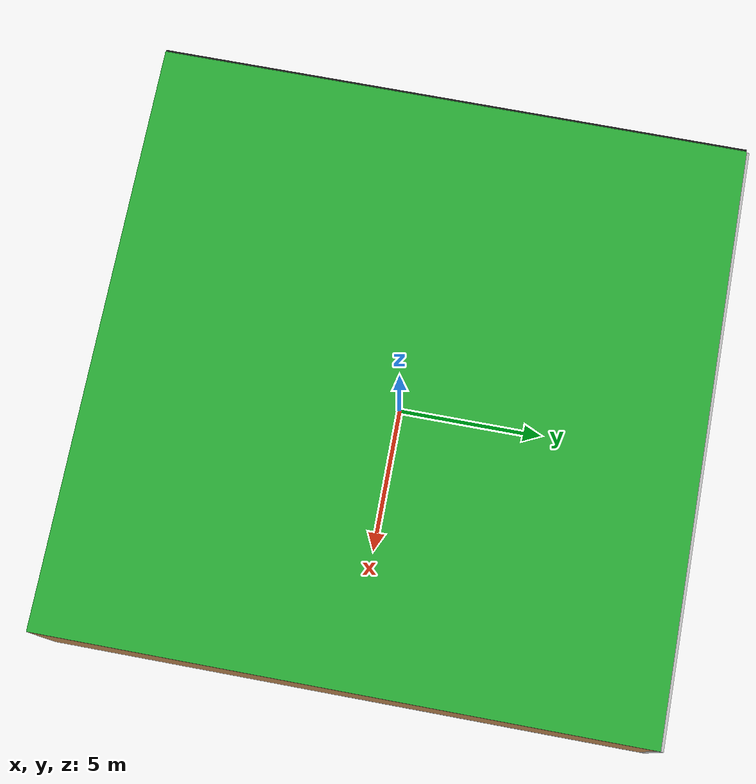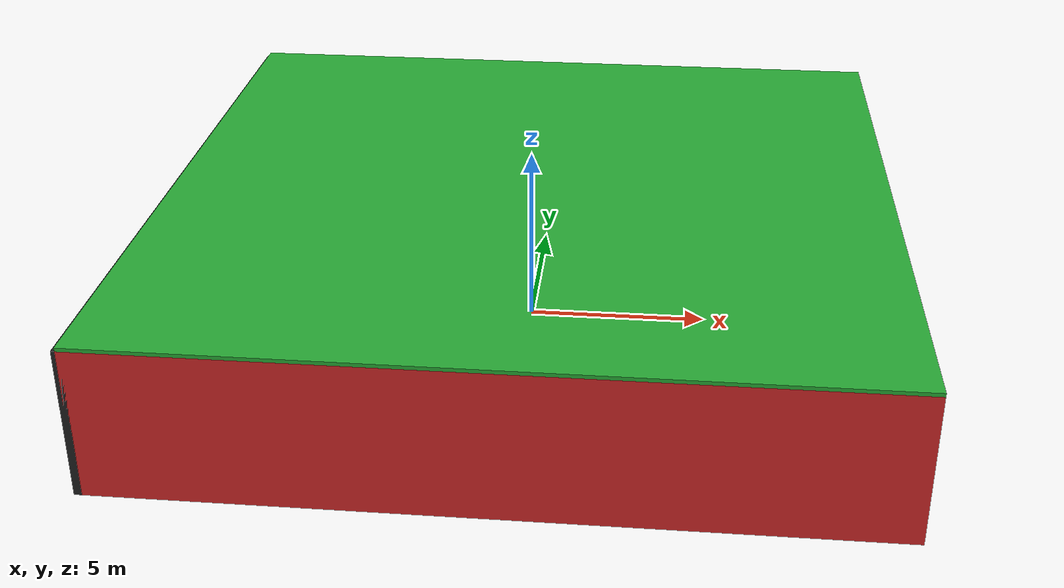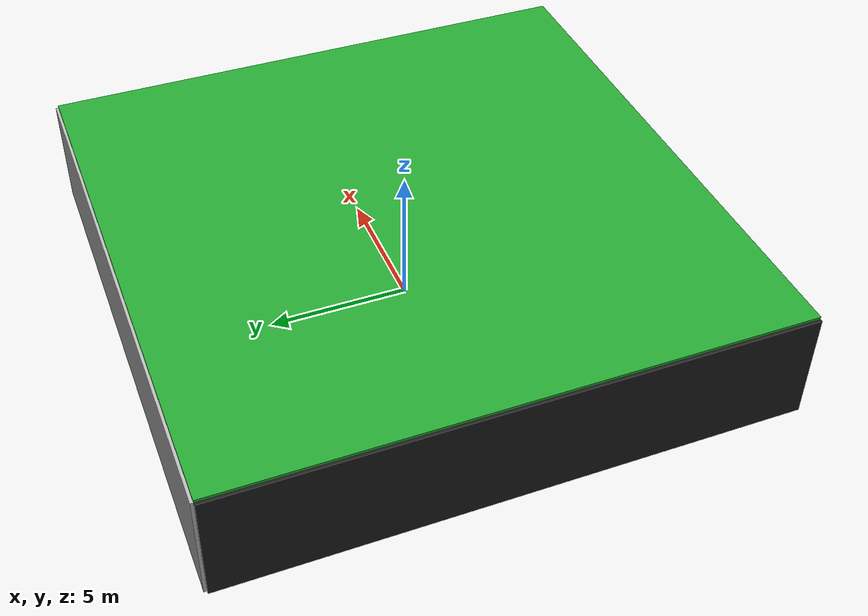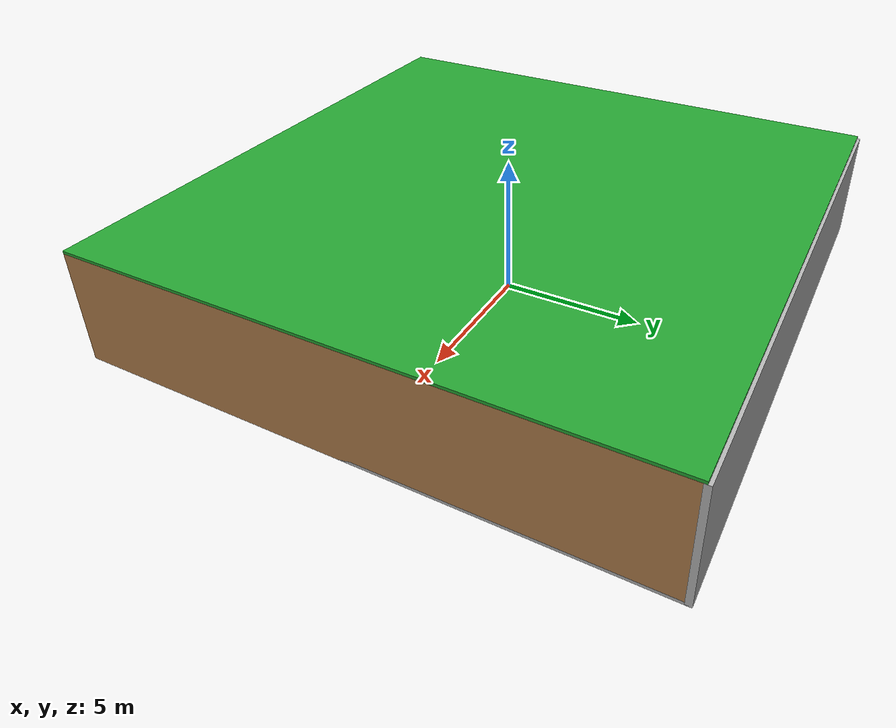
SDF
<sdf version="1.4">
 <world name="default">
  <physics type="ode">
   <max_step_size>0.001</max_step_size>
   <real_time_factor>1</real_time_factor>
   <real_time_update_rate>1000</real_time_update_rate>
   <gravity>0 0 -9.8</gravity>
  </physics>
  <scene><ambient>0.4 0.4 0.4 1</ambient><background>0.7 0.7 0.7 1</background><shadows>1</shadows></scene>
  <model name="Surrounding">
   <static>1</static>
   <link name="Ceiling">
    <collision name="Ceiling_Collision"><geometry><box><size>20 20 0.1</size></box></geometry></collision>
    <visual name="Ceiling_Visual">
     <geometry><box><size>20 20 0.1</size></box></geometry>
     <material>
      <script><uri>file://media/materials/scripts/gazebo.material</uri><name>Gazebo/Green</name></script>
     </material>
    </visual>
    <pose>0 0 4.05 0 0 0</pose>
   </link>
   <link name="Wall_South">
    <collision name="Wall_South_Collision">
     <geometry><box><size>20 0 4</size></box></geometry>
     <pose>0 0 2 0 -0 0</pose>
    </collision>
    <visual name="Wall_South_Visual">
     <pose>0 0 2 0 -0 0</pose>
     <geometry><box><size>20 0 4</size></box></geometry>
     <material>
      <script><uri>file://media/materials/scripts/gazebo.material</uri><name>Gazebo/RedBright</name></script>
     </material>
    </visual>
    <velocity_decay><linear>0</linear><angular>0</angular></velocity_decay>
    <pose>0 -10 0 0 -0 0</pose>
   </link>
   <link name="Wall_East">
    <collision name="Wall_21_Collision">
     <geometry><box><size>20 0 4</size></box></geometry>
     <pose>0 0 2 0 -0 0</pose>
    </collision>
    <visual name="Wall_21_Visual">
     <pose>0 0 2 0 -0 0</pose>
     <geometry><box><size>20 0 4</size></box></geometry>
     <material>
      <script><uri>file://media/materials/scripts/gazebo.material</uri><name>Gazebo/WoodPallet</name></script>
     </material>
    </visual>
    <velocity_decay><linear>0</linear><angular>0</angular></velocity_decay>
    <pose>10 0 0 0 -0 1.5708</pose>
   </link>
   <link name="Wall_North">
    <collision name="Wall_22_Collision">
     <geometry><box><size>20 0.2 4</size></box></geometry>
     <pose>0 0 2 0 -0 0</pose>
    </collision>
    <visual name="Wall_22_Visual">
     <pose>0 0 2 0 -0 0</pose>
     <geometry><box><size>20 0.2 4</size></box></geometry>
     <material>
      <script><uri>file://media/materials/scripts/gazebo.material</uri><name>Gazebo/PioneerBody</name></script>
     </material>
    </visual>
    <velocity_decay><linear>0</linear><angular>0</angular></velocity_decay>
    <pose>0 10 0 0 -0 0</pose>
   </link>
   <link name="Wall_West">
    <collision name="Wall_23_Collision">
     <geometry><box><size>20 0.2 4</size></box></geometry>
     <pose>0 0 2 0 -0 0</pose>
    </collision>
    <visual name="Wall_23_Visual">
     <pose>0 0 2 0 -0 0</pose>
     <geometry><box><size>20 0.2 4</size></box></geometry>
     <material>
      <script><uri>file://media/materials/scripts/gazebo.material</uri><name>Gazebo/FlatBlack</name></script>
     </material>
    </visual>
    <velocity_decay><linear>0</linear><angular>0</angular></velocity_decay>
    <pose>-10 0 0 0 0 -1.5708</pose>
   </link>
   <link name="Ground_link">
    <collision name="collision">
     <pose>0 0 .05 0 -0 0</pose>
     <geometry><box><size>20 20 0.1</size></box></geometry>
    </collision>
    <visual name="visual">
     <pose>0 0 .05 0 -0 0</pose>
     <geometry><box><size>20 20 0.1</size></box></geometry>
     <material>
      <script><uri>file://media/materials/scripts/gazebo.material</uri><name>Gazebo/Pioneer2Body</name></script>
     </material>
    </visual>
   </link>
   <static>1</static>
  </model>
  <spherical_coordinates>
   <surface_model>EARTH_WGS84</surface_model>
   <latitude_deg>0</latitude_deg>
   <longitude_deg>0</longitude_deg>
   <elevation>0</elevation>
   <heading_deg>0</heading_deg>
  </spherical_coordinates>
  <light name="lightball_0" type="diffuse">
   <diffuse>0.8 0.8 0.8 1</diffuse>
   <specular>0.2 0.2 0.2 1</specular>
   <attenuation>
    <range>100</range>
    <constant>0.7</constant>
    <linear>0.01</linear>
    <quadratic>0.001</quadratic>
   </attenuation>
   <direction>-0.5 0.1 -0.9</direction>
   <pose>9.95308713091 -3.54568824668 2.42061267975 0 0 0</pose>
  </light>
  <light name="lightball_1" type="diffuse">
   <diffuse>0.8 0.8 0.8 1</diffuse>
   <specular>0.2 0.2 0.2 1</specular>
   <attenuation>
    <range>100</range>
    <constant>0.7</constant>
    <linear>0.01</linear>
    <quadratic>0.001</quadratic>
   </attenuation>
   <direction>-0.5 0.1 -0.9</direction>
   <pose>-9.99006634836 9.73716650867 1.10283664084 0 0 0</pose>
  </light>
  <include><uri>model://table</uri><pose>-8.20558799956 8.0624597874 0 0 0 1.80279687567</pose></include>
  <include>
   <uri>model://construction_cone</uri>
   <pose>-4.91621855178 -1.40081142348 0 0 0 0.429577909251</pose>
  </include>
  <include><uri>model://table</uri><pose>4.52555218658 3.72690766935 0 0 0 0.236191903065</pose></include>
  <include><uri>model://table</uri><pose>6.73785582004 5.17673186787 0 0 0 1.80124240432</pose></include>
 </world>
</sdf>

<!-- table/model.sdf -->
<sdf version="1.5">
  <model name="table">
    <static>true</static>
    <link name="link">
      <collision name="surface">
        <pose>0 0 1.0 0 0 0</pose>
        <geometry>
          <box>
            <size>1.5 0.8 0.03</size>
          </box>
        </geometry>
        <surface>
          <friction>
            <ode>
              <mu>0.6</mu>
              <mu2>0.6</mu2>
            </ode>
          </friction>
        </surface>
      </collision>
      <visual name="visual1">
        <pose>0 0 1.0 0 0 0</pose>
        <geometry>
          <box>
            <size>1.5 0.8 0.03</size>
          </box>
        </geometry>
        <material>
          <script>
            <uri>model://media/materials/scripts/gazebo.material</uri>
            <name>Gazebo/Wood</name>
          </script>
        </material>
      </visual>
      <collision name="front_left_leg">
        <pose>0.68 0.38 0.5 0 0 0</pose>
        <geometry>
          <cylinder>
            <radius>0.02</radius>
            <length>1.0</length>
          </cylinder>
        </geometry>
      </collision>
      <visual name="front_left_leg">
        <pose>0.68 0.38 0.5 0 0 0</pose>
        <geometry>
          <cylinder>
            <radius>0.02</radius>
            <length>1.0</length>
          </cylinder>
        </geometry>
        <material>
          <script>
            <uri>model://media/materials/scripts/gazebo.material</uri>
            <name>Gazebo/Grey</name>
          </script>
        </material>
      </visual>
      <collision name="front_right_leg">
        <pose>0.68 -0.38 0.5 0 0 0</pose>
        <geometry>
          <cylinder>
            <radius>0.02</radius>
            <length>1.0</length>
          </cylinder>
        </geometry>
      </collision>
      <visual name="front_right_leg">
        <pose>0.68 -0.38 0.5 0 0 0</pose>
        <geometry>
          <cylinder>
            <radius>0.02</radius>
            <length>1.0</length>
          </cylinder>
        </geometry>
        <material>
          <script>
            <uri>model://media/materials/scripts/gazebo.material</uri>
            <name>Gazebo/Grey</name>
          </script>
        </material>
      </visual>
      <collision name="back_right_leg">
        <pose>-0.68 -0.38 0.5 0 0 0</pose>
        <geometry>
          <cylinder>
            <radius>0.02</radius>
            <length>1.0</length>
          </cylinder>
        </geometry>
      </collision>
      <visual name="back_right_leg">
        <pose>-0.68 -0.38 0.5 0 0 0</pose>
        <geometry>
          <cylinder>
            <radius>0.02</radius>
            <length>1.0</length>
          </cylinder>
        </geometry>
        <material>
          <script>
            <uri>model://media/materials/scripts/gazebo.material</uri>
            <name>Gazebo/Grey</name>
          </script>
        </material>
      </visual>
      <collision name="back_left_leg">
        <pose>-0.68 0.38 0.5 0 0 0</pose>
        <geometry>
          <cylinder>
            <radius>0.02</radius>
            <length>1.0</length>
          </cylinder>
        </geometry>
      </collision>
      <visual name="back_left_leg">
        <pose>-0.68 0.38 0.5 0 0 0</pose>
        <geometry>
          <cylinder>
            <radius>0.02</radius>
            <length>1.0</length>
          </cylinder>
        </geometry>
        <material>
          <script>
            <uri>model://media/materials/scripts/gazebo.material</uri>
            <name>Gazebo/Grey</name>
          </script>
        </material>
      </visual>
    </link>
  </model>
</sdf>

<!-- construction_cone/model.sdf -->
<sdf version="1.5">
  <model name="Construction Cone">
    <link name="link">
      <collision name="collision">
        <geometry>
          <mesh>
            <scale>10 10 10</scale>
            <uri>file://isr-testbed/construction_cone/meshes/construction_cone.dae</uri>
          </mesh>
        </geometry>
      </collision>
      <visual name="visual">
        <geometry>
          <mesh>
            <scale>10 10 10</scale>
            <uri>file://isr-testbed/construction_cone/meshes/construction_cone.dae</uri>
          </mesh>
        </geometry>
      </visual>
    </link>
  </model>
</sdf>
